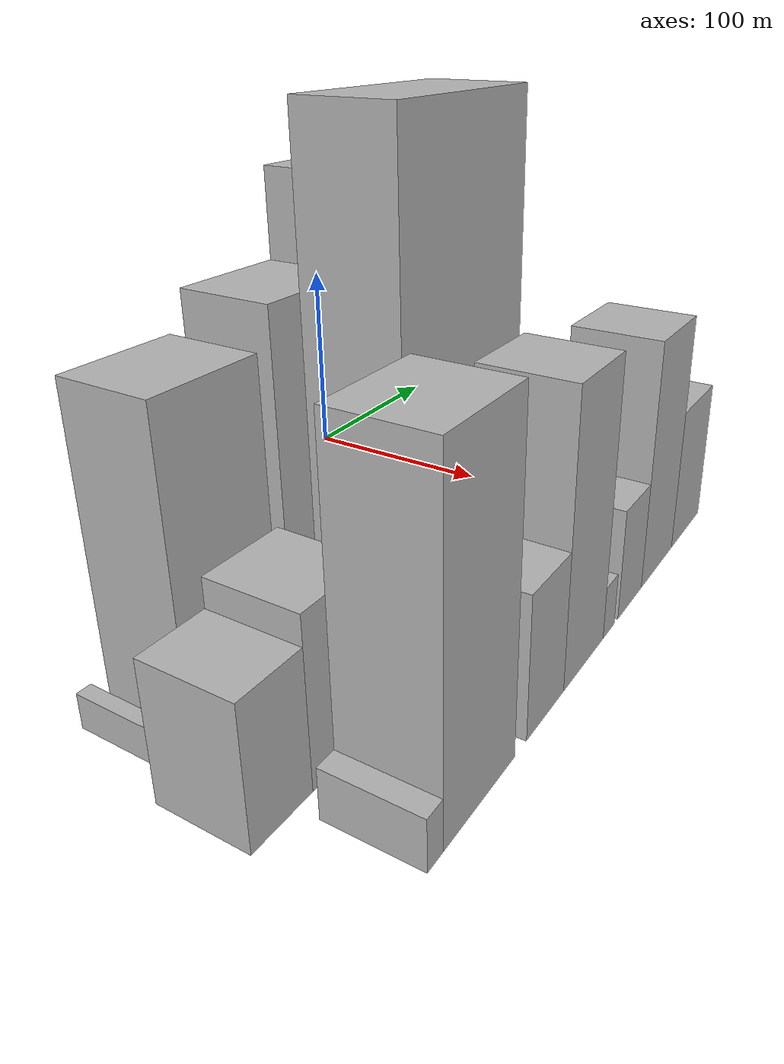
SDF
<sdf version="1.6">
 <world name="default">
  <model name="building_9">
   <static>1</static>
   <pose>100.0000 -241.7813 0 0.000000 0.000000 0.000000</pose>
   <link name="link">
    <pose>0 0 7.50 0 0 0</pose>
    <collision name="collision"><geometry><box><size>40.0000 6.3077 15.0000</size></box></geometry></collision>
    <visual name="visual">
     <cast_shadows>0</cast_shadows>
     <geometry><box><size>40.0000 6.3077 15.0000</size></box></geometry>
     <material>
      <script>
       <uri>model://HANNAS_wall/materials/scripts</uri>
       <uri>model://HANNAS_wall/materials/textures</uri>
       <name>vrc/HANNAS_wall</name>
      </script>
     </material>
    </visual>
   </link>
  </model>
  <model name="building_10">
   <static>1</static>
   <pose>100.0000 -207.3583 0 0.000000 0.000000 0.000000</pose>
   <link name="link">
    <pose>0 0 64.50 0 0 0</pose>
    <collision name="collision"><geometry><box><size>40.0000 48.5383 129.0000</size></box></geometry></collision>
    <visual name="visual">
     <cast_shadows>0</cast_shadows>
     <geometry><box><size>40.0000 48.5383 129.0000</size></box></geometry>
     <material>
      <script>
       <uri>model://HANNAS_wall/materials/scripts</uri>
       <uri>model://HANNAS_wall/materials/textures</uri>
       <name>vrc/HANNAS_wall</name>
      </script>
     </material>
    </visual>
   </link>
  </model>
  <model name="building_11">
   <static>1</static>
   <pose>100.0000 -151.8537 0 0.000000 0.000000 0.000000</pose>
   <link name="link">
    <pose>0 0 72.00 0 0 0</pose>
    <collision name="collision"><geometry><box><size>40.0000 48.4710 144.0000</size></box></geometry></collision>
    <visual name="visual">
     <cast_shadows>0</cast_shadows>
     <geometry><box><size>40.0000 48.4710 144.0000</size></box></geometry>
     <material>
      <script>
       <uri>model://HANNAS_wall/materials/scripts</uri>
       <uri>model://HANNAS_wall/materials/textures</uri>
       <name>vrc/HANNAS_wall</name>
      </script>
     </material>
    </visual>
   </link>
  </model>
  <model name="building_12">
   <static>1</static>
   <pose>100.0000 -96.7841 0 0.000000 0.000000 0.000000</pose>
   <link name="link">
    <pose>0 0 90.00 0 0 0</pose>
    <collision name="collision"><geometry><box><size>40.0000 61.6681 180.0000</size></box></geometry></collision>
    <visual name="visual">
     <cast_shadows>0</cast_shadows>
     <geometry><box><size>40.0000 61.6681 180.0000</size></box></geometry>
     <material>
      <script>
       <uri>model://HANNAS_wall/materials/scripts</uri>
       <uri>model://HANNAS_wall/materials/textures</uri>
       <name>vrc/HANNAS_wall</name>
      </script>
     </material>
    </visual>
   </link>
  </model>
  <model name="building_13">
   <static>1</static>
   <pose>100.0000 -56.4498 0 0.000000 0.000000 0.000000</pose>
   <link name="link">
    <pose>0 0 18.00 0 0 0</pose>
    <collision name="collision"><geometry><box><size>40.0000 19.0006 36.0000</size></box></geometry></collision>
    <visual name="visual">
     <cast_shadows>0</cast_shadows>
     <geometry><box><size>40.0000 19.0006 36.0000</size></box></geometry>
     <material>
      <script>
       <uri>model://HANNAS_wall/materials/scripts</uri>
       <uri>model://HANNAS_wall/materials/textures</uri>
       <name>vrc/HANNAS_wall</name>
      </script>
     </material>
    </visual>
   </link>
  </model>
  <model name="building_14">
   <static>1</static>
   <pose>100.0000 -26.9856 0 0.000000 0.000000 0.000000</pose>
   <link name="link">
    <pose>0 0 64.50 0 0 0</pose>
    <collision name="collision"><geometry><box><size>40.0000 39.9278 129.0000</size></box></geometry></collision>
    <visual name="visual">
     <cast_shadows>0</cast_shadows>
     <geometry><box><size>40.0000 39.9278 129.0000</size></box></geometry>
     <material>
      <script>
       <uri>model://HANNAS_wall/materials/scripts</uri>
       <uri>model://HANNAS_wall/materials/textures</uri>
       <name>vrc/HANNAS_wall</name>
      </script>
     </material>
    </visual>
   </link>
  </model>
  <model name="building_40">
   <static>1</static>
   <pose>149.0000 -241.8862 0 0.000000 0.000000 0.000000</pose>
   <link name="link">
    <pose>0 0 28.50 0 0 0</pose>
    <collision name="collision"><geometry><box><size>40.0000 29.9763 57.0000</size></box></geometry></collision>
    <visual name="visual">
     <cast_shadows>0</cast_shadows>
     <geometry><box><size>40.0000 29.9763 57.0000</size></box></geometry>
     <material>
      <script>
       <uri>model://HANNAS_wall/materials/scripts</uri>
       <uri>model://HANNAS_wall/materials/textures</uri>
       <name>vrc/HANNAS_wall</name>
      </script>
     </material>
    </visual>
   </link>
  </model>
  <model name="building_41">
   <static>1</static>
   <pose>149.0000 -208.3323 0 0.000000 0.000000 0.000000</pose>
   <link name="link">
    <pose>0 0 34.50 0 0 0</pose>
    <collision name="collision"><geometry><box><size>40.0000 37.1314 69.0000</size></box></geometry></collision>
    <visual name="visual">
     <cast_shadows>0</cast_shadows>
     <geometry><box><size>40.0000 37.1314 69.0000</size></box></geometry>
     <material>
      <script>
       <uri>model://HANNAS_wall/materials/scripts</uri>
       <uri>model://HANNAS_wall/materials/textures</uri>
       <name>vrc/HANNAS_wall</name>
      </script>
     </material>
    </visual>
   </link>
  </model>
  <model name="building_42">
   <static>1</static>
   <pose>149.0000 -179.9812 0 0.000000 0.000000 0.000000</pose>
   <link name="link">
    <pose>0 0 18.00 0 0 0</pose>
    <collision name="collision"><geometry><box><size>40.0000 19.5709 36.0000</size></box></geometry></collision>
    <visual name="visual">
     <cast_shadows>0</cast_shadows>
     <geometry><box><size>40.0000 19.5709 36.0000</size></box></geometry>
     <material>
      <script>
       <uri>model://HANNAS_wall/materials/scripts</uri>
       <uri>model://HANNAS_wall/materials/textures</uri>
       <name>vrc/HANNAS_wall</name>
      </script>
     </material>
    </visual>
   </link>
  </model>
  <model name="building_43">
   <static>1</static>
   <pose>149.0000 -128.4672 0 0.000000 0.000000 0.000000</pose>
   <link name="link">
    <pose>0 0 105.00 0 0 0</pose>
    <collision name="collision"><geometry><box><size>40.0000 83.4570 210.0000</size></box></geometry></collision>
    <visual name="visual">
     <cast_shadows>0</cast_shadows>
     <geometry><box><size>40.0000 83.4570 210.0000</size></box></geometry>
     <material>
      <script>
       <uri>model://HANNAS_wall/materials/scripts</uri>
       <uri>model://HANNAS_wall/materials/textures</uri>
       <name>vrc/HANNAS_wall</name>
      </script>
     </material>
    </visual>
   </link>
  </model>
  <model name="building_44">
   <static>1</static>
   <pose>149.0000 -81.1608 0 0.000000 0.000000 0.000000</pose>
   <link name="link">
    <pose>0 0 13.50 0 0 0</pose>
    <collision name="collision"><geometry><box><size>40.0000 11.1558 27.0000</size></box></geometry></collision>
    <visual name="visual">
     <cast_shadows>0</cast_shadows>
     <geometry><box><size>40.0000 11.1558 27.0000</size></box></geometry>
     <material>
      <script>
       <uri>model://HANNAS_wall/materials/scripts</uri>
       <uri>model://HANNAS_wall/materials/textures</uri>
       <name>vrc/HANNAS_wall</name>
      </script>
     </material>
    </visual>
   </link>
  </model>
  <model name="building_45">
   <static>1</static>
   <pose>149.0000 -58.9629 0 0.000000 0.000000 0.000000</pose>
   <link name="link">
    <pose>0 0 31.50 0 0 0</pose>
    <collision name="collision"><geometry><box><size>40.0000 33.2399 63.0000</size></box></geometry></collision>
    <visual name="visual">
     <cast_shadows>0</cast_shadows>
     <geometry><box><size>40.0000 33.2399 63.0000</size></box></geometry>
     <material>
      <script>
       <uri>model://HANNAS_wall/materials/scripts</uri>
       <uri>model://HANNAS_wall/materials/textures</uri>
       <name>vrc/HANNAS_wall</name>
      </script>
     </material>
    </visual>
   </link>
  </model>
  <model name="building_46">
   <static>1</static>
   <pose>149.0000 -22.9066 0 0.000000 0.000000 0.000000</pose>
   <link name="link">
    <pose>0 0 21.00 0 0 0</pose>
    <collision name="collision"><geometry><box><size>40.0000 22.8728 42.0000</size></box></geometry></collision>
    <visual name="visual">
     <cast_shadows>0</cast_shadows>
     <geometry><box><size>40.0000 22.8728 42.0000</size></box></geometry>
     <material>
      <script>
       <uri>model://HANNAS_wall/materials/scripts</uri>
       <uri>model://HANNAS_wall/materials/textures</uri>
       <name>vrc/HANNAS_wall</name>
      </script>
     </material>
    </visual>
   </link>
  </model>
  <model name="building_47">
   <static>1</static>
   <pose>149.0000 0.3282 0 0.000000 0.000000 0.000000</pose>
   <link name="link">
    <pose>0 0 21.00 0 0 0</pose>
    <collision name="collision"><geometry><box><size>40.0000 23.5967 42.0000</size></box></geometry></collision>
    <visual name="visual">
     <cast_shadows>0</cast_shadows>
     <geometry><box><size>40.0000 23.5967 42.0000</size></box></geometry>
     <material>
      <script>
       <uri>model://HANNAS_wall/materials/scripts</uri>
       <uri>model://HANNAS_wall/materials/textures</uri>
       <name>vrc/HANNAS_wall</name>
      </script>
     </material>
    </visual>
   </link>
  </model>
  <model name="building_66">
   <static>1</static>
   <pose>198.0000 -230.4330 0 0.000000 0.000000 0.000000</pose>
   <link name="link">
    <pose>0 0 10.50 0 0 0</pose>
    <collision name="collision"><geometry><box><size>40.0000 9.1260 21.0000</size></box></geometry></collision>
    <visual name="visual">
     <cast_shadows>0</cast_shadows>
     <geometry><box><size>40.0000 9.1260 21.0000</size></box></geometry>
     <material>
      <script>
       <uri>model://HANNAS_wall/materials/scripts</uri>
       <uri>model://HANNAS_wall/materials/textures</uri>
       <name>vrc/HANNAS_wall</name>
      </script>
     </material>
    </visual>
   </link>
  </model>
  <model name="building_67">
   <static>1</static>
   <pose>198.0000 -202.3218 0 0.000000 0.000000 0.000000</pose>
   <link name="link">
    <pose>0 0 69.00 0 0 0</pose>
    <collision name="collision"><geometry><box><size>40.0000 47.0966 138.0000</size></box></geometry></collision>
    <visual name="visual">
     <cast_shadows>0</cast_shadows>
     <geometry><box><size>40.0000 47.0966 138.0000</size></box></geometry>
     <material>
      <script>
       <uri>model://HANNAS_wall/materials/scripts</uri>
       <uri>model://HANNAS_wall/materials/textures</uri>
       <name>vrc/HANNAS_wall</name>
      </script>
     </material>
    </visual>
   </link>
  </model>
  <model name="building_68">
   <static>1</static>
   <pose>198.0000 -154.3235 0 0.000000 0.000000 0.000000</pose>
   <link name="link">
    <pose>0 0 30.00 0 0 0</pose>
    <collision name="collision"><geometry><box><size>40.0000 30.8999 60.0000</size></box></geometry></collision>
    <visual name="visual">
     <cast_shadows>0</cast_shadows>
     <geometry><box><size>40.0000 30.8999 60.0000</size></box></geometry>
     <material>
      <script>
       <uri>model://HANNAS_wall/materials/scripts</uri>
       <uri>model://HANNAS_wall/materials/textures</uri>
       <name>vrc/HANNAS_wall</name>
      </script>
     </material>
    </visual>
   </link>
  </model>
  <model name="building_69">
   <static>1</static>
   <pose>198.0000 -119.7338 0 0.000000 0.000000 0.000000</pose>
   <link name="link">
    <pose>0 0 61.50 0 0 0</pose>
    <collision name="collision"><geometry><box><size>40.0000 38.2794 123.0000</size></box></geometry></collision>
    <visual name="visual">
     <cast_shadows>0</cast_shadows>
     <geometry><box><size>40.0000 38.2794 123.0000</size></box></geometry>
     <material>
      <script>
       <uri>model://HANNAS_wall/materials/scripts</uri>
       <uri>model://HANNAS_wall/materials/textures</uri>
       <name>vrc/HANNAS_wall</name>
      </script>
     </material>
    </visual>
   </link>
  </model>
  <model name="building_70">
   <static>1</static>
   <pose>198.0000 -94.6216 0 0.000000 0.000000 0.000000</pose>
   <link name="link">
    <pose>0 0 12.00 0 0 0</pose>
    <collision name="collision"><geometry><box><size>40.0000 11.9450 24.0000</size></box></geometry></collision>
    <visual name="visual">
     <cast_shadows>0</cast_shadows>
     <geometry><box><size>40.0000 11.9450 24.0000</size></box></geometry>
     <material>
      <script>
       <uri>model://HANNAS_wall/materials/scripts</uri>
       <uri>model://HANNAS_wall/materials/textures</uri>
       <name>vrc/HANNAS_wall</name>
      </script>
     </material>
    </visual>
   </link>
  </model>
  <model name="building_71">
   <static>1</static>
   <pose>198.0000 -70.8648 0 0.000000 0.000000 0.000000</pose>
   <link name="link">
    <pose>0 0 25.50 0 0 0</pose>
    <collision name="collision"><geometry><box><size>40.0000 27.5685 51.0000</size></box></geometry></collision>
    <visual name="visual">
     <cast_shadows>0</cast_shadows>
     <geometry><box><size>40.0000 27.5685 51.0000</size></box></geometry>
     <material>
      <script>
       <uri>model://HANNAS_wall/materials/scripts</uri>
       <uri>model://HANNAS_wall/materials/textures</uri>
       <name>vrc/HANNAS_wall</name>
      </script>
     </material>
    </visual>
   </link>
  </model>
  <model name="building_72">
   <static>1</static>
   <pose>198.0000 -36.9192 0 0.000000 0.000000 0.000000</pose>
   <link name="link">
    <pose>0 0 57.00 0 0 0</pose>
    <collision name="collision"><geometry><box><size>40.0000 40.3227 114.0000</size></box></geometry></collision>
    <visual name="visual">
     <cast_shadows>0</cast_shadows>
     <geometry><box><size>40.0000 40.3227 114.0000</size></box></geometry>
     <material>
      <script>
       <uri>model://HANNAS_wall/materials/scripts</uri>
       <uri>model://HANNAS_wall/materials/textures</uri>
       <name>vrc/HANNAS_wall</name>
      </script>
     </material>
    </visual>
   </link>
  </model>
  <model name="building_73">
   <static>1</static>
   <pose>198.0000 3.4808 0 0.000000 0.000000 0.000000</pose>
   <link name="link">
    <pose>0 0 34.50 0 0 0</pose>
    <collision name="collision"><geometry><box><size>40.0000 40.4773 69.0000</size></box></geometry></collision>
    <visual name="visual">
     <cast_shadows>0</cast_shadows>
     <geometry><box><size>40.0000 40.4773 69.0000</size></box></geometry>
     <material>
      <script>
       <uri>model://HANNAS_wall/materials/scripts</uri>
       <uri>model://HANNAS_wall/materials/textures</uri>
       <name>vrc/HANNAS_wall</name>
      </script>
     </material>
    </visual>
   </link>
  </model>
 </world>
</sdf>
